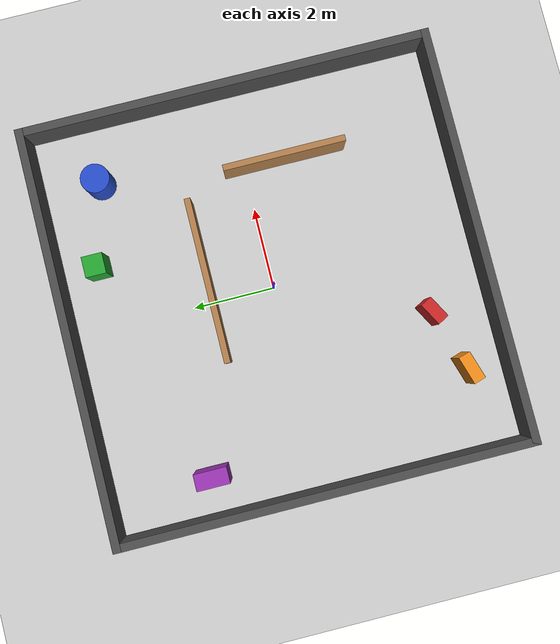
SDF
<sdf version="1.6">
 <world name="env_b">
  <include><uri>model://ground_plane</uri></include>
  <light name="sun" type="directional">
   <pose>0 0 10 0 0 0</pose>
   <diffuse>0.8 0.8 0.8 1</diffuse>
   <specular>0.1 0.1 0.1 1</specular>
   <direction>-0.5 0.5 -1</direction>
  </light>
  <scene>
   <ambient>0.8 0.8 0.8 1</ambient>
   <background>0.9 0.9 0.95 1</background>
   <fog>
    <type>linear</type>
    <color>0.9 0.9 0.9 1</color>
    <density>0.05</density>
    <start>8.0</start>
    <end>25.0</end>
   </fog>
  </scene>
  <physics type="ode">
   <real_time_update_rate>1000</real_time_update_rate>
   <max_step_size>0.001</max_step_size>
   <real_time_factor>1</real_time_factor>
  </physics>
  <model name="wall_north">
   <static>true</static>
   <pose>0 5 0.5 0 0 0</pose>
   <link name="link">
    <collision name="col"><geometry><box><size>10.2 0.2 1</size></box></geometry></collision>
    <visual name="vis">
     <geometry><box><size>10.2 0.2 1</size></box></geometry>
     <material><script><name>Gazebo/DarkGrey</name></script></material>
    </visual>
   </link>
  </model>
  <model name="wall_south">
   <static>true</static>
   <pose>0 -5 0.5 0 0 0</pose>
   <link name="link">
    <collision name="col"><geometry><box><size>10.2 0.2 1</size></box></geometry></collision>
    <visual name="vis">
     <geometry><box><size>10.2 0.2 1</size></box></geometry>
     <material><script><name>Gazebo/DarkGrey</name></script></material>
    </visual>
   </link>
  </model>
  <model name="wall_east">
   <static>true</static>
   <pose>5 0 0.5 0 0 0</pose>
   <link name="link">
    <collision name="col"><geometry><box><size>0.2 10.2 1</size></box></geometry></collision>
    <visual name="vis">
     <geometry><box><size>0.2 10.2 1</size></box></geometry>
     <material><script><name>Gazebo/DarkGrey</name></script></material>
    </visual>
   </link>
  </model>
  <model name="wall_west">
   <static>true</static>
   <pose>-5 0 0.5 0 0 0</pose>
   <link name="link">
    <collision name="col"><geometry><box><size>0.2 10.2 1</size></box></geometry></collision>
    <visual name="vis">
     <geometry><box><size>0.2 10.2 1</size></box></geometry>
     <material><script><name>Gazebo/DarkGrey</name></script></material>
    </visual>
   </link>
  </model>
  <model name="interior_wall_h">
   <static>true</static>
   <pose>0.5 1.5 0.5 0 0 0</pose>
   <link name="link">
    <collision name="col"><geometry><box><size>4.0 0.15 1.0</size></box></geometry></collision>
    <visual name="vis">
     <geometry><box><size>4.0 0.15 1.0</size></box></geometry>
     <material><script><name>Gazebo/WoodFloor</name></script></material>
    </visual>
   </link>
  </model>
  <model name="interior_wall_v">
   <static>true</static>
   <pose>3.0 -1.0 0.5 0 0 0</pose>
   <link name="link">
    <collision name="col"><geometry><box><size>0.15 3.0 1.0</size></box></geometry></collision>
    <visual name="vis">
     <geometry><box><size>0.15 3.0 1.0</size></box></geometry>
     <material><script><name>Gazebo/WoodFloor</name></script></material>
    </visual>
   </link>
  </model>
  <model name="obs_1">
   <static>true</static>
   <pose>-1.5 -3.5 0.5 0 0 0.5</pose>
   <link name="link">
    <collision name="col"><geometry><box><size>0.6 0.3 1.0</size></box></geometry></collision>
    <visual name="vis">
     <geometry><box><size>0.6 0.3 1.0</size></box></geometry>
     <material><script><name>Gazebo/Red</name></script></material>
    </visual>
   </link>
  </model>
  <model name="obs_2">
   <static>true</static>
   <pose>3.5 3.5 0.5 0 0 0</pose>
   <link name="link">
    <collision name="col">
     <geometry><cylinder><radius>0.35</radius><length>1.0</length></cylinder></geometry>
    </collision>
    <visual name="vis">
     <geometry><cylinder><radius>0.35</radius><length>1.0</length></cylinder></geometry>
     <material><script><name>Gazebo/Blue</name></script></material>
    </visual>
   </link>
  </model>
  <model name="obs_3">
   <static>true</static>
   <pose>-4.0 2.5 0.5 0 0 0</pose>
   <link name="link">
    <collision name="col"><geometry><box><size>0.4 0.8 1.0</size></box></geometry></collision>
    <visual name="vis">
     <geometry><box><size>0.4 0.8 1.0</size></box></geometry>
     <material><script><name>Gazebo/Purple</name></script></material>
    </visual>
   </link>
  </model>
  <model name="obs_4">
   <static>true</static>
   <pose>1.5 4.0 0.5 0 0 0</pose>
   <link name="link">
    <collision name="col"><geometry><box><size>0.5 0.5 1.0</size></box></geometry></collision>
    <visual name="vis">
     <geometry><box><size>0.5 0.5 1.0</size></box></geometry>
     <material><script><name>Gazebo/Green</name></script></material>
    </visual>
   </link>
  </model>
  <model name="obs_5">
   <static>true</static>
   <pose>-3.0 -4.0 0.5 0 0 0.3</pose>
   <link name="link">
    <collision name="col"><geometry><box><size>0.7 0.3 1.0</size></box></geometry></collision>
    <visual name="vis">
     <geometry><box><size>0.7 0.3 1.0</size></box></geometry>
     <material><script><name>Gazebo/Orange</name></script></material>
    </visual>
   </link>
  </model>
 </world>
</sdf>
